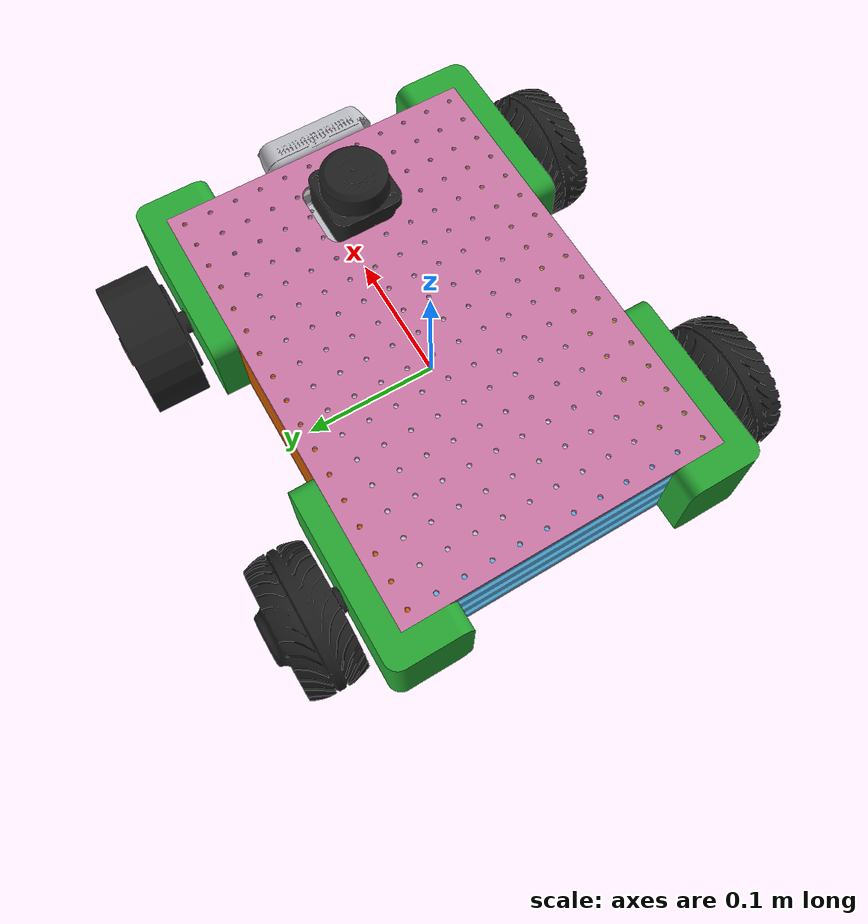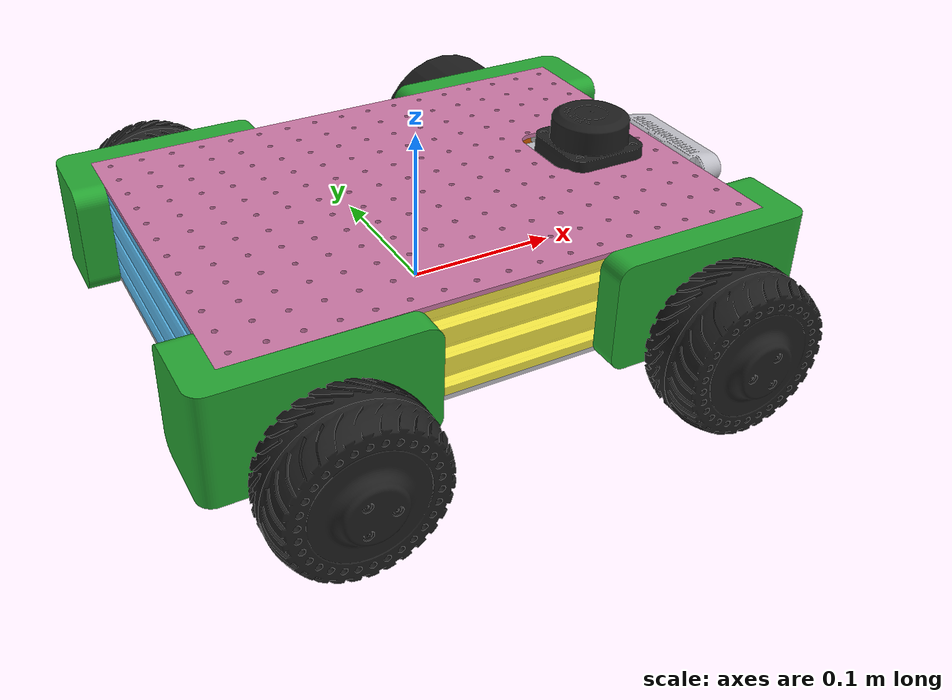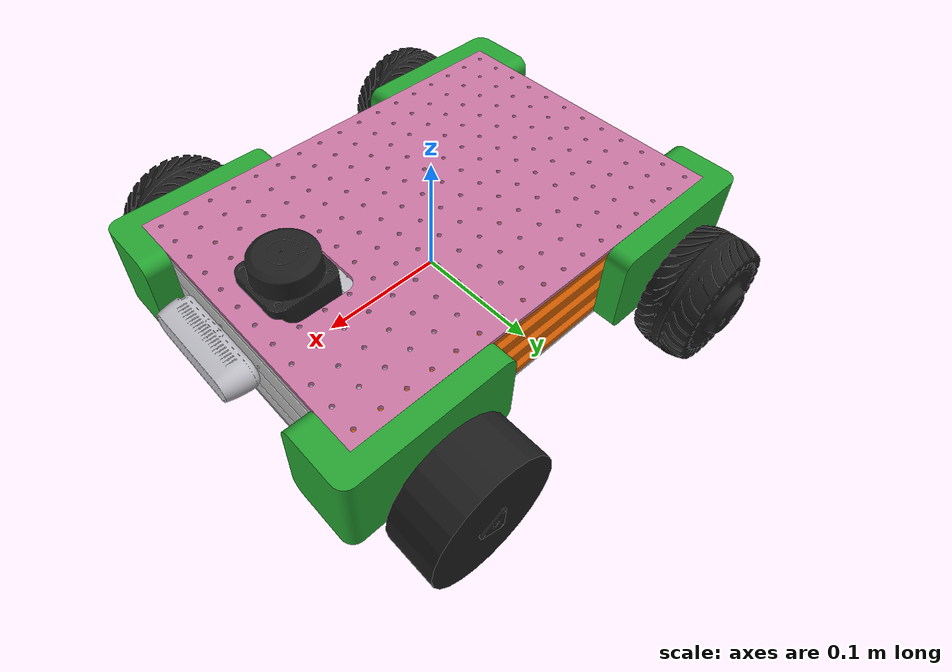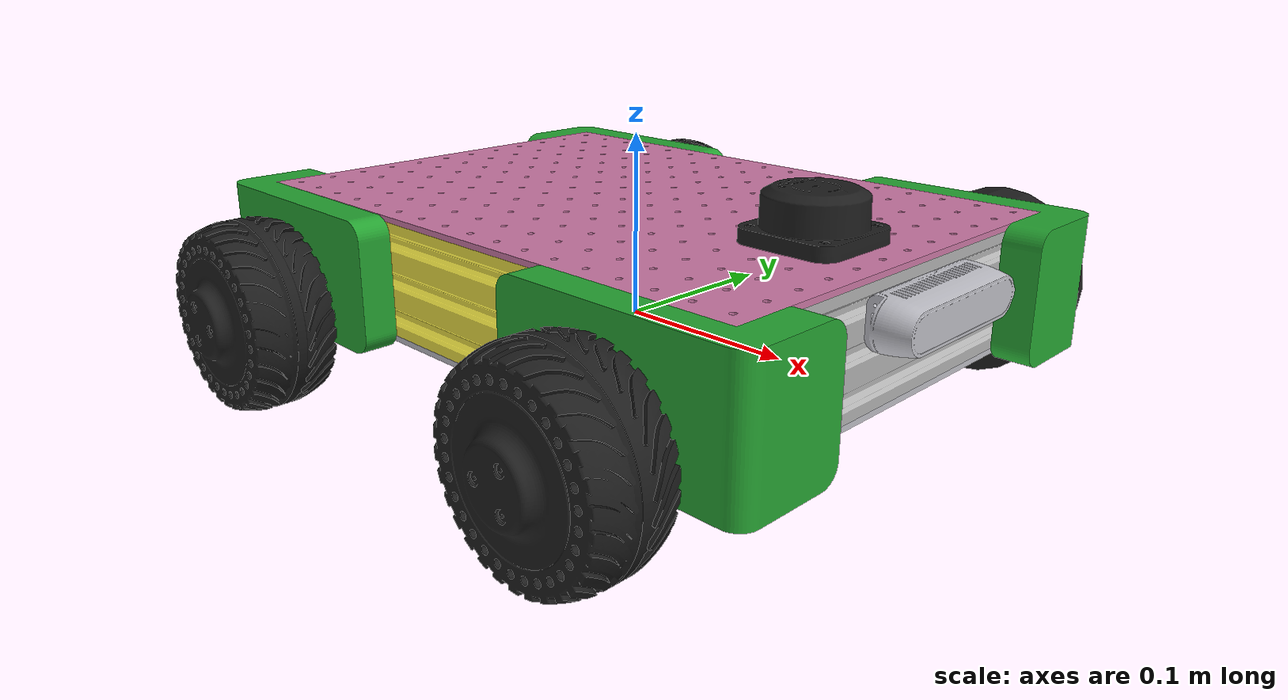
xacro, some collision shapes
<?xml version="1.0" ?>
<robot name="base101_pro" xmlns:xacro="http://www.ros.org/wiki/xacro">

<link name="base_link">
  <inertial>
    <origin xyz="-0.0005374241823813008 0.00019193720799293601 0.0015000000000000124" rpy="0 0 0"/>
    <mass value="1.8682863061101787"/>
    <inertia ixx="0.008987" iyy="0.017929" izz="0.026913" ixy="-5e-05" iyz="0.0" ixz="0.0"/>
  </inertial>
  <visual>
    <origin xyz="0 0 0" rpy="0 0 0"/>
    <geometry>
      <mesh filename="file://$(find base101_description)/meshes/pro/base_link.stl" scale="0.001 0.001 0.001"/>
    </geometry>
    <material name="silver"/>
  </visual>
  <collision>
    <origin xyz="0 0 0" rpy="0 0 0"/>
    <geometry>
      <mesh filename="file://$(find base101_description)/meshes/pro/base_link.stl" scale="0.001 0.001 0.001"/>
    </geometry>
  </collision>
</link>

<link name="lidar_1">
  <inertial>
    <origin xyz="-0.021415606463210946 -0.02159451573525311 0.014018388436459112" rpy="0 0 0"/>
    <mass value="0.25367492603904185"/>
    <inertia ixx="0.000111" iyy="0.000111" izz="0.000156" ixy="-0.0" iyz="-0.0" ixz="0.0"/>
  </inertial>
  <visual>
    <origin xyz="-0.138888 -0.0215 -0.043187" rpy="0 0 0"/>
    <geometry>
      <mesh filename="file://$(find base101_description)/meshes/pro/lidar_1.stl" scale="0.001 0.001 0.001"/>
    </geometry>
    <material name="motor_black"/>
  </visual>
  <collision>
    <origin xyz="-0.138888 -0.0215 -0.043187" rpy="0 0 0"/>
    <geometry>
      <mesh filename="file://$(find base101_description)/meshes/pro/lidar_1.stl" scale="0.001 0.001 0.001"/>
    </geometry>
  </collision>
</link>

<link name="lidar_mount_1">
  <inertial>
    <origin xyz="0.019171684757676236 -0.04999999999997897 -0.019135200833008646" rpy="0 0 0"/>
    <mass value="0.16996755064728442"/>
    <inertia ixx="0.000221" iyy="4.8e-05" izz="0.000261" ixy="-0.0" iyz="-0.0" ixz="-0.0"/>
  </inertial>
  <visual>
    <origin xyz="-0.1 -0.05 -0.063" rpy="0 0 0"/>
    <geometry>
      <mesh filename="file://$(find base101_description)/meshes/pro/lidar_mount_1.stl" scale="0.001 0.001 0.001"/>
    </geometry>
    <material name="silver"/>
  </visual>
  <collision>
    <origin xyz="-0.1 -0.05 -0.063" rpy="0 0 0"/>
    <geometry>
      <mesh filename="file://$(find base101_description)/meshes/pro/lidar_mount_1.stl" scale="0.001 0.001 0.001"/>
    </geometry>
  </collision>
</link>

<link name="base_camera">
  <inertial>
    <origin xyz="0.012450337454890298 -0.021387631051719317 -2.7969539088602835e-05" rpy="0 0 0"/>
    <mass value="0.35928853728306875"/>
    <inertia ixx="0.000217" iyy="3.3e-05" izz="0.000219" ixy="3e-06" iyz="-0.0" ixz="0.0"/>
  </inertial>
  <visual>
    <origin xyz="-0.17 -0.0225 -0.043" rpy="0 0 0"/>
    <geometry>
      <mesh filename="file://$(find base101_description)/meshes/pro/base_camera.stl" scale="0.001 0.001 0.001"/>
    </geometry>
    <material name="silver"/>
  </visual>
  <collision>
    <origin xyz="-0.17 -0.0225 -0.043" rpy="0 0 0"/>
    <geometry>
      <mesh filename="file://$(find base101_description)/meshes/pro/base_camera.stl" scale="0.001 0.001 0.001"/>
    </geometry>
  </collision>
</link>

<link name="motor_outer_front_right_1">
  <inertial>
    <origin xyz="1.2719001356298332e-07 0.02189640902429757 3.153885931063416e-06" rpy="0 0 0"/>
    <mass value="1.4186378147291319"/>
    <inertia ixx="0.001366" iyy="0.002263" izz="0.001366" ixy="-0.0" iyz="-0.0" ixz="-0.0"/>
  </inertial>
  <visual>
    <origin xyz="-0.119655 0.1883 -0.01021" rpy="0 0 0"/>
    <geometry>
      <mesh filename="file://$(find base101_description)/meshes/pro/motor_outer_front_right_1.stl" scale="0.001 0.001 0.001"/>
    </geometry>
    <material name="motor_black"/>
  </visual>
  <collision>
    <origin xyz="1.2719e-07 0.0218964 3.15389e-06" rpy="1.5708 0 0"/>
    <geometry>
      <cylinder length="0.04" radius="0.05035"/>
    </geometry>
  </collision>
</link>

<link name="bumper_front_right_1">
  <inertial>
    <origin xyz="-0.03354165067824974 -0.0017324595680366234 -0.03475527287515688" rpy="0 0 0"/>
    <mass value="1.727950390853913"/>
    <inertia ixx="0.001061" iyy="0.003796" izz="0.00345" ixy="-0.000545" iyz="4e-06" ixz="7e-06"/>
  </inertial>
  <visual>
    <origin xyz="-0.17 0.12 -0.066" rpy="0 0 0"/>
    <geometry>
      <mesh filename="file://$(find base101_description)/meshes/pro/bumper_front_right_1.stl" scale="0.001 0.001 0.001"/>
    </geometry>
    <material name="accent_green"/>
  </visual>
  <collision>
    <origin xyz="-0.17 0.12 -0.066" rpy="0 0 0"/>
    <geometry>
      <mesh filename="file://$(find base101_description)/meshes/pro/bumper_front_right_1.stl" scale="0.001 0.001 0.001"/>
    </geometry>
  </collision>
</link>

<link name="motor_inner_front_right_1">
  <inertial>
    <origin xyz="2.8280713050179984e-05 -0.035078949042714885 0.00759750646563017" rpy="0 0 0"/>
    <mass value="1.0579766899709089"/>
    <inertia ixx="0.000426" iyy="0.00054" izz="0.000426" ixy="-0.0" iyz="0.0" ixz="0.0"/>
  </inertial>
  <visual>
    <origin xyz="-0.119627 0.128 -0.00261" rpy="0 0 0"/>
    <geometry>
      <mesh filename="file://$(find base101_description)/meshes/pro/motor_inner_front_right_1.stl" scale="0.001 0.001 0.001"/>
    </geometry>
    <material name="motor_black"/>
  </visual>
  <collision>
    <origin xyz="-0.119627 0.128 -0.00261" rpy="0 0 0"/>
    <geometry>
      <mesh filename="file://$(find base101_description)/meshes/pro/motor_inner_front_right_1.stl" scale="0.001 0.001 0.001"/>
    </geometry>
  </collision>
</link>

<link name="motor_inner_rear_left_1">
  <inertial>
    <origin xyz="2.284820112552488e-07 0.03507894904270989 0.007597182214617892" rpy="0 0 0"/>
    <mass value="1.0579766899709089"/>
    <inertia ixx="0.000426" iyy="0.00054" izz="0.000426" ixy="-0.0" iyz="-0.0" ixz="-0.0"/>
  </inertial>
  <visual>
    <origin xyz="0.119865 -0.128 -0.002422" rpy="0 0 0"/>
    <geometry>
      <mesh filename="file://$(find base101_description)/meshes/pro/motor_inner_rear_left_1.stl" scale="0.001 0.001 0.001"/>
    </geometry>
    <material name="motor_black"/>
  </visual>
  <collision>
    <origin xyz="0.119865 -0.128 -0.002422" rpy="0 0 0"/>
    <geometry>
      <mesh filename="file://$(find base101_description)/meshes/pro/motor_inner_rear_left_1.stl" scale="0.001 0.001 0.001"/>
    </geometry>
  </collision>
</link>

<link name="motor_inner_front_left_1">
  <inertial>
    <origin xyz="-4.647270169799711e-07 0.03507894904270767 0.007597182214618083" rpy="0 0 0"/>
    <mass value="1.0579766899709089"/>
    <inertia ixx="0.000426" iyy="0.00054" izz="0.000426" ixy="-0.0" iyz="-0.0" ixz="-0.0"/>
  </inertial>
  <visual>
    <origin xyz="-0.119865 -0.128 -0.002422" rpy="0 0 0"/>
    <geometry>
      <mesh filename="file://$(find base101_description)/meshes/pro/motor_inner_front_left_1.stl" scale="0.001 0.001 0.001"/>
    </geometry>
    <material name="motor_black"/>
  </visual>
  <collision>
    <origin xyz="-0.119865 -0.128 -0.002422" rpy="0 0 0"/>
    <geometry>
      <mesh filename="file://$(find base101_description)/meshes/pro/motor_inner_front_left_1.stl" scale="0.001 0.001 0.001"/>
    </geometry>
  </collision>
</link>

<link name="motor_inner_rear_right_1">
  <inertial>
    <origin xyz="4.647270117202895e-07 -0.035078949042715385 0.0075971822146173335" rpy="0 0 0"/>
    <mass value="1.0579766899709089"/>
    <inertia ixx="0.000426" iyy="0.00054" izz="0.000426" ixy="-0.0" iyz="0.0" ixz="0.0"/>
  </inertial>
  <visual>
    <origin xyz="0.119865 0.128 -0.002422" rpy="0 0 0"/>
    <geometry>
      <mesh filename="file://$(find base101_description)/meshes/pro/motor_inner_rear_right_1.stl" scale="0.001 0.001 0.001"/>
    </geometry>
    <material name="motor_black"/>
  </visual>
  <collision>
    <origin xyz="0.119865 0.128 -0.002422" rpy="0 0 0"/>
    <geometry>
      <mesh filename="file://$(find base101_description)/meshes/pro/motor_inner_rear_right_1.stl" scale="0.001 0.001 0.001"/>
    </geometry>
  </collision>
</link>

<link name="motor_outer_front_left_1">
  <inertial>
    <origin xyz="-2.900358112012391e-07 -0.02189640902430484 2.829019764291965e-06" rpy="0 0 0"/>
    <mass value="1.4186378147291319"/>
    <inertia ixx="0.001366" iyy="0.002263" izz="0.001366" ixy="-0.0" iyz="0.0" ixz="0.0"/>
  </inertial>
  <visual>
    <origin xyz="-0.119865 -0.1883 -0.010022" rpy="0 0 0"/>
    <geometry>
      <mesh filename="file://$(find base101_description)/meshes/pro/motor_outer_front_left_1.stl" scale="0.001 0.001 0.001"/>
    </geometry>
    <material name="motor_black"/>
  </visual>
  <collision>
    <origin xyz="-2.90036e-07 -0.0218964 2.82902e-06" rpy="1.5708 0 0"/>
    <geometry>
      <cylinder length="0.04" radius="0.05035"/>
    </geometry>
  </collision>
</link>

<link name="motor_outer_rear_left_1">
  <inertial>
    <origin xyz="4.031732173392921e-07 -0.02189640902430276 2.829019764090737e-06" rpy="0 0 0"/>
    <mass value="1.4186378147291319"/>
    <inertia ixx="0.001366" iyy="0.002263" izz="0.001366" ixy="-0.0" iyz="0.0" ixz="0.0"/>
  </inertial>
  <visual>
    <origin xyz="0.119865 -0.1883 -0.010022" rpy="0 0 0"/>
    <geometry>
      <mesh filename="file://$(find base101_description)/meshes/pro/motor_outer_rear_left_1.stl" scale="0.001 0.001 0.001"/>
    </geometry>
    <material name="motor_black"/>
  </visual>
  <collision>
    <origin xyz="4.03173e-07 -0.0218964 2.82902e-06" rpy="1.5708 0 0"/>
    <geometry>
      <cylinder length="0.04" radius="0.05035"/>
    </geometry>
  </collision>
</link>

<link name="motor_outer_rear_right_1">
  <inertial>
    <origin xyz="4.0317322172467307e-07 0.02189640902429682 -3.585161877917714e-06" rpy="0 0 0"/>
    <mass value="1.4186378147291319"/>
    <inertia ixx="0.001366" iyy="0.002263" izz="0.001366" ixy="0.0" iyz="0.0" ixz="-0.0"/>
  </inertial>
  <visual>
    <origin xyz="0.119865 0.1883 -0.010022" rpy="0 0 0"/>
    <geometry>
      <mesh filename="file://$(find base101_description)/meshes/pro/motor_outer_rear_right_1.stl" scale="0.001 0.001 0.001"/>
    </geometry>
    <material name="motor_black"/>
  </visual>
  <collision>
    <origin xyz="4.03173e-07 0.0218964 -3.58516e-06" rpy="1.5708 0 0"/>
    <geometry>
      <cylinder length="0.04" radius="0.05035"/>
    </geometry>
  </collision>
</link>

<link name="box_left_1">
  <inertial>
    <origin xyz="0.17000000000000853 -0.010000000000000286 0.030006693288685108" rpy="0 0 0"/>
    <mass value="1.143643042060435"/>
    <inertia ixx="0.000446" iyy="0.011412" izz="0.01106" ixy="-0.0" iyz="0.0" ixz="0.0"/>
  </inertial>
  <visual>
    <origin xyz="0.17 -0.12 -0.003" rpy="0 0 0"/>
    <geometry>
      <mesh filename="file://$(find base101_description)/meshes/pro/box_left_1.stl" scale="0.001 0.001 0.001"/>
    </geometry>
    <material name="body_aluminum"/>
  </visual>
  <collision>
    <origin xyz="0.17 -0.12 -0.003" rpy="0 0 0"/>
    <geometry>
      <mesh filename="file://$(find base101_description)/meshes/pro/box_left_1.stl" scale="0.001 0.001 0.001"/>
    </geometry>
  </collision>
</link>

<link name="core_top_plate_v1_1">
  <inertial>
    <origin xyz="0.1656535793036086 -0.12000000000000753 0.001500000000000487" rpy="0 0 0"/>
    <mass value="1.8083617012058602"/>
    <inertia ixx="0.008989" iyy="0.017099" izz="0.026085" ixy="-0.0" iyz="0.0" ixz="0.0"/>
  </inertial>
  <visual>
    <origin xyz="0.17 -0.12 -0.063" rpy="0 0 0"/>
    <geometry>
      <mesh filename="file://$(find base101_description)/meshes/pro/core_top_plate_v1_1.stl" scale="0.001 0.001 0.001"/>
    </geometry>
    <material name="body_aluminum"/>
  </visual>
  <collision>
    <origin xyz="0.17 -0.12 -0.063" rpy="0 0 0"/>
    <geometry>
      <mesh filename="file://$(find base101_description)/meshes/pro/core_top_plate_v1_1.stl" scale="0.001 0.001 0.001"/>
    </geometry>
  </collision>
</link>

<link name="box_front_1">
  <inertial>
    <origin xyz="-0.009999999999995457 -0.09999999999999518 0.029994061900627495" rpy="0 0 0"/>
    <mass value="0.6728017040951292"/>
    <inertia ixx="0.002479" iyy="0.000262" izz="0.002271" ixy="-0.0" iyz="-0.0" ixz="0.0"/>
  </inertial>
  <visual>
    <origin xyz="-0.17 -0.1 -0.003" rpy="0 0 0"/>
    <geometry>
      <mesh filename="file://$(find base101_description)/meshes/pro/box_front_1.stl" scale="0.001 0.001 0.001"/>
    </geometry>
    <material name="body_aluminum"/>
  </visual>
  <collision>
    <origin xyz="-0.17 -0.1 -0.003" rpy="0 0 0"/>
    <geometry>
      <mesh filename="file://$(find base101_description)/meshes/pro/box_front_1.stl" scale="0.001 0.001 0.001"/>
    </geometry>
  </collision>
</link>

<link name="bumper_front_left_1">
  <inertial>
    <origin xyz="-0.0334111355473575 0.0017324595680307392 -0.03488075894077595" rpy="0 0 0"/>
    <mass value="1.7279503908539129"/>
    <inertia ixx="0.001061" iyy="0.003796" izz="0.00345" ixy="0.000545" iyz="-2e-06" ixz="-2e-06"/>
  </inertial>
  <visual>
    <origin xyz="-0.17 -0.12 -0.066" rpy="0 0 0"/>
    <geometry>
      <mesh filename="file://$(find base101_description)/meshes/pro/bumper_front_left_1.stl" scale="0.001 0.001 0.001"/>
    </geometry>
    <material name="accent_green"/>
  </visual>
  <collision>
    <origin xyz="-0.17 -0.12 -0.066" rpy="0 0 0"/>
    <geometry>
      <mesh filename="file://$(find base101_description)/meshes/pro/bumper_front_left_1.stl" scale="0.001 0.001 0.001"/>
    </geometry>
  </collision>
</link>

<link name="box_back_1">
  <inertial>
    <origin xyz="0.010000000000009113 -0.10000000000000028 0.030000000000001085" rpy="0 0 0"/>
    <mass value="0.673201220432864"/>
    <inertia ixx="0.002479" iyy="0.000262" izz="0.002272" ixy="-0.0" iyz="-0.0" ixz="0.0"/>
  </inertial>
  <visual>
    <origin xyz="0.17 -0.1 -0.003" rpy="0 0 0"/>
    <geometry>
      <mesh filename="file://$(find base101_description)/meshes/pro/box_back_1.stl" scale="0.001 0.001 0.001"/>
    </geometry>
    <material name="body_aluminum"/>
  </visual>
  <collision>
    <origin xyz="0.17 -0.1 -0.003" rpy="0 0 0"/>
    <geometry>
      <mesh filename="file://$(find base101_description)/meshes/pro/box_back_1.stl" scale="0.001 0.001 0.001"/>
    </geometry>
  </collision>
</link>

<link name="bumper_rear_left_1">
  <inertial>
    <origin xyz="0.033411135547349424 0.0017324595680322519 -0.03488075894077622" rpy="0 0 0"/>
    <mass value="1.727950390853913"/>
    <inertia ixx="0.001061" iyy="0.003796" izz="0.00345" ixy="-0.000545" iyz="-2e-06" ixz="2e-06"/>
  </inertial>
  <visual>
    <origin xyz="0.17 -0.12 -0.066" rpy="0 0 0"/>
    <geometry>
      <mesh filename="file://$(find base101_description)/meshes/pro/bumper_rear_left_1.stl" scale="0.001 0.001 0.001"/>
    </geometry>
    <material name="accent_green"/>
  </visual>
  <collision>
    <origin xyz="0.17 -0.12 -0.066" rpy="0 0 0"/>
    <geometry>
      <mesh filename="file://$(find base101_description)/meshes/pro/bumper_rear_left_1.stl" scale="0.001 0.001 0.001"/>
    </geometry>
  </collision>
</link>

<link name="box_right_1">
  <inertial>
    <origin xyz="0.17000000000000257 0.009999999999998427 0.030006693288684595" rpy="0 0 0"/>
    <mass value="1.143643042060448"/>
    <inertia ixx="0.000446" iyy="0.011412" izz="0.01106" ixy="-0.0" iyz="-0.0" ixz="0.0"/>
  </inertial>
  <visual>
    <origin xyz="0.17 0.12 -0.003" rpy="0 0 0"/>
    <geometry>
      <mesh filename="file://$(find base101_description)/meshes/pro/box_right_1.stl" scale="0.001 0.001 0.001"/>
    </geometry>
    <material name="body_aluminum"/>
  </visual>
  <collision>
    <origin xyz="0.17 0.12 -0.003" rpy="0 0 0"/>
    <geometry>
      <mesh filename="file://$(find base101_description)/meshes/pro/box_right_1.stl" scale="0.001 0.001 0.001"/>
    </geometry>
  </collision>
</link>

<link name="bumper_rear_right_1">
  <inertial>
    <origin xyz="0.03341113554735062 -0.0017324595680367622 -0.034880758940776746" rpy="0 0 0"/>
    <mass value="1.7279503908539129"/>
    <inertia ixx="0.001061" iyy="0.003796" izz="0.00345" ixy="0.000545" iyz="2e-06" ixz="2e-06"/>
  </inertial>
  <visual>
    <origin xyz="0.17 0.12 -0.066" rpy="0 0 0"/>
    <geometry>
      <mesh filename="file://$(find base101_description)/meshes/pro/bumper_rear_right_1.stl" scale="0.001 0.001 0.001"/>
    </geometry>
    <material name="accent_green"/>
  </visual>
  <collision>
    <origin xyz="0.17 0.12 -0.066" rpy="0 0 0"/>
    <geometry>
      <mesh filename="file://$(find base101_description)/meshes/pro/bumper_rear_right_1.stl" scale="0.001 0.001 0.001"/>
    </geometry>
  </collision>
</link>

<joint name="Rigid 12" type="fixed">
  <origin xyz="0.038888 -0.0285 -0.019813" rpy="0 0 0"/>
  <parent link="lidar_mount_1"/>
  <child link="lidar_1"/>
</joint>

<joint name="Rigid 31" type="fixed">
  <origin xyz="0.27 -0.07 0.0" rpy="0 0 0"/>
  <parent link="core_top_plate_v1_1"/>
  <child link="lidar_mount_1"/>
</joint>

<joint name="Rigid 33" type="fixed">
  <origin xyz="0.0 -0.0775 0.04" rpy="0 0 0"/>
  <parent link="box_front_1"/>
  <child link="base_camera"/>
</joint>

<joint name="wheel_front_right" type="continuous">
  <origin xyz="2.8e-05 -0.0603 0.0076" rpy="0 0 0"/>
  <parent link="motor_inner_front_right_1"/>
  <child link="motor_outer_front_right_1"/>
  <axis xyz="0.0 1.0 0.0"/>
</joint>

<joint name="Rigid 39" type="fixed">
  <origin xyz="0.34 -0.24 0.003" rpy="0 0 0"/>
  <parent link="core_top_plate_v1_1"/>
  <child link="bumper_front_right_1"/>
</joint>

<joint name="Rigid 40" type="fixed">
  <origin xyz="-0.050373 -0.008 -0.06339" rpy="0 0 0"/>
  <parent link="bumper_front_right_1"/>
  <child link="motor_inner_front_right_1"/>
</joint>

<joint name="Rigid 41" type="fixed">
  <origin xyz="0.050135 0.008 -0.063578" rpy="0 0 0"/>
  <parent link="bumper_rear_left_1"/>
  <child link="motor_inner_rear_left_1"/>
</joint>

<joint name="Rigid 42" type="fixed">
  <origin xyz="-0.050135 0.008 -0.063578" rpy="0 0 0"/>
  <parent link="bumper_front_left_1"/>
  <child link="motor_inner_front_left_1"/>
</joint>

<joint name="Rigid 43" type="fixed">
  <origin xyz="0.050135 -0.008 -0.063578" rpy="0 0 0"/>
  <parent link="bumper_rear_right_1"/>
  <child link="motor_inner_rear_right_1"/>
</joint>

<joint name="wheel_front_left" type="continuous">
  <origin xyz="0.0 0.0603 0.0076" rpy="0 0 0"/>
  <parent link="motor_inner_front_left_1"/>
  <child link="motor_outer_front_left_1"/>
  <axis xyz="0.0 1.0 0.0"/>
</joint>

<joint name="wheel_rear_left" type="continuous">
  <origin xyz="0.0 0.0603 0.0076" rpy="0 0 0"/>
  <parent link="motor_inner_rear_left_1"/>
  <child link="motor_outer_rear_left_1"/>
  <axis xyz="0.0 1.0 0.0"/>
</joint>

<joint name="wheel_rear_right" type="continuous">
  <origin xyz="0.0 -0.0603 0.0076" rpy="0 0 0"/>
  <parent link="motor_inner_rear_right_1"/>
  <child link="motor_outer_rear_right_1"/>
  <axis xyz="0.0 1.0 0.0"/>
</joint>

<joint name="Rigid 47" type="fixed">
  <origin xyz="-0.17 0.12 0.003" rpy="0 0 0"/>
  <parent link="base_link"/>
  <child link="box_left_1"/>
</joint>

<joint name="Rigid 48" type="fixed">
  <origin xyz="0.0 0.0 0.06" rpy="0 0 0"/>
  <parent link="box_left_1"/>
  <child link="core_top_plate_v1_1"/>
</joint>

<joint name="Rigid 49" type="fixed">
  <origin xyz="0.34 -0.02 0.0" rpy="0 0 0"/>
  <parent link="box_left_1"/>
  <child link="box_front_1"/>
</joint>

<joint name="Rigid 50" type="fixed">
  <origin xyz="0.34 0.0 0.003" rpy="0 0 0"/>
  <parent link="core_top_plate_v1_1"/>
  <child link="bumper_front_left_1"/>
</joint>

<joint name="Rigid 51" type="fixed">
  <origin xyz="0.0 -0.02 0.0" rpy="0 0 0"/>
  <parent link="box_left_1"/>
  <child link="box_back_1"/>
</joint>

<joint name="Rigid 52" type="fixed">
  <origin xyz="0.0 0.0 0.003" rpy="0 0 0"/>
  <parent link="core_top_plate_v1_1"/>
  <child link="bumper_rear_left_1"/>
</joint>

<joint name="Rigid 53" type="fixed">
  <origin xyz="-0.17 -0.12 0.003" rpy="0 0 0"/>
  <parent link="base_link"/>
  <child link="box_right_1"/>
</joint>

<joint name="Rigid 54" type="fixed">
  <origin xyz="0.0 -0.24 0.003" rpy="0 0 0"/>
  <parent link="core_top_plate_v1_1"/>
  <child link="bumper_rear_right_1"/>
</joint>

<link name="lidar_frame"/>
<joint name="lidar_frame_joint" type="fixed">
  <origin xyz="-0.021416 -0.021595 0.044018" rpy="0 0 0"/>
  <parent link="lidar_1"/>
  <child link="lidar_frame"/>
</joint>

</robot>
